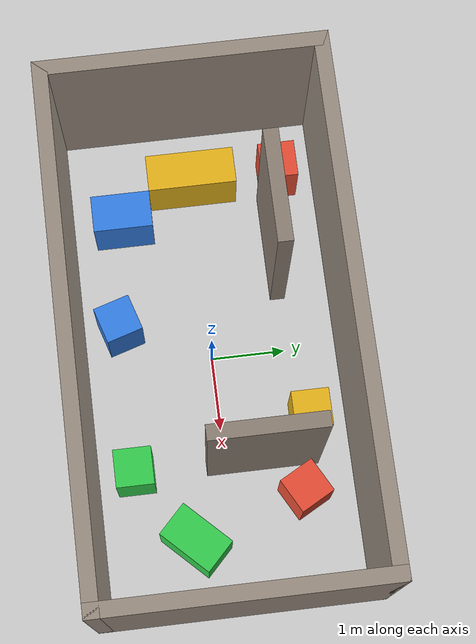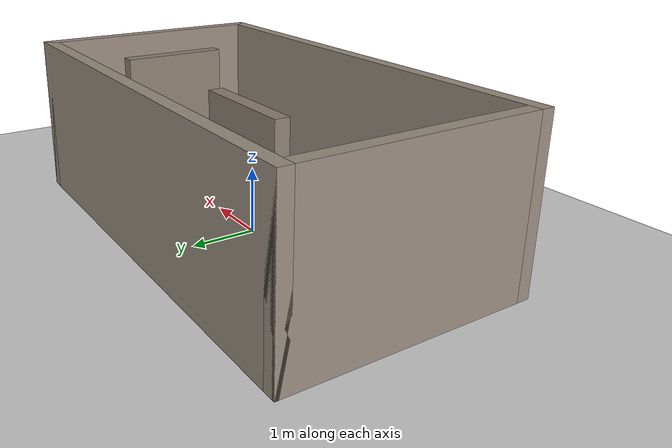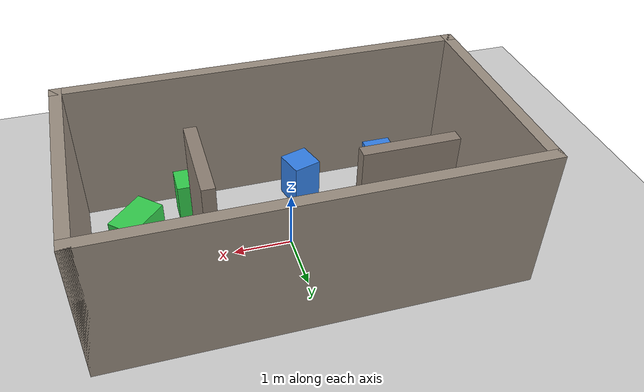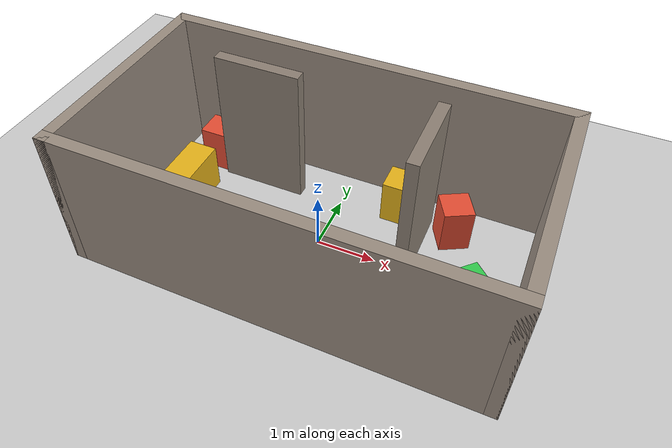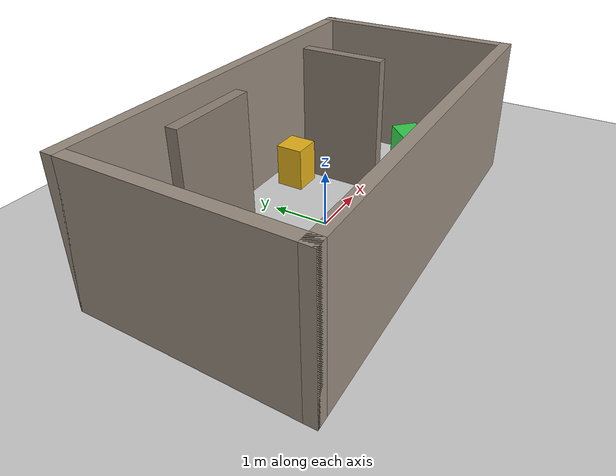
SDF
<?xml version="1.0" ?>
<sdf version="1.9">
  <world name="leo_exploration_world">

    <!-- ═══════════════════════════════════════════════════════════════
         Physics & plugins
    ═══════════════════════════════════════════════════════════════════ -->
    <physics name="1ms" type="ignored">
      <max_step_size>0.001</max_step_size>
      <real_time_factor>1.0</real_time_factor>
    </physics>

    <plugin filename="gz-sim-physics-system"
            name="gz::sim::systems::Physics"/>
    <plugin filename="gz-sim-user-commands-system"
            name="gz::sim::systems::UserCommands"/>
    <plugin filename="gz-sim-scene-broadcaster-system"
            name="gz::sim::systems::SceneBroadcaster"/>
    <plugin filename="gz-sim-sensors-system"
            name="gz::sim::systems::Sensors">
      <render_engine>ogre2</render_engine>
    </plugin>
    <plugin filename="gz-sim-imu-system"
            name="gz::sim::systems::Imu"/>
    <plugin filename="gz-sim-contact-system"
            name="gz::sim::systems::Contact"/>

    <!-- ═══════════════════════════════════════════════════════════════
         Lighting
    ═══════════════════════════════════════════════════════════════════ -->
    <light name="sun" type="directional">
      <cast_shadows>true</cast_shadows>
      <pose>0 0 10 0 0 0</pose>
      <diffuse>0.8 0.8 0.8 1</diffuse>
      <specular>0.2 0.2 0.2 1</specular>
      <attenuation>
        <range>1000</range>
        <constant>0.9</constant>
        <linear>0.01</linear>
        <quadratic>0.001</quadratic>
      </attenuation>
      <direction>-0.5 0.1 -0.9</direction>
    </light>

    <!-- ═══════════════════════════════════════════════════════════════
         Ground plane
    ═══════════════════════════════════════════════════════════════════ -->
    <model name="ground_plane">
      <static>true</static>
      <link name="link">
        <collision name="collision">
          <geometry>
            <plane><normal>0 0 1</normal><size>30 30</size></plane>
          </geometry>
        </collision>
        <visual name="visual">
          <geometry>
            <plane><normal>0 0 1</normal><size>30 30</size></plane>
          </geometry>
          <material>
            <ambient>0.8 0.8 0.8 1</ambient>
            <diffuse>0.8 0.8 0.8 1</diffuse>
          </material>
        </visual>
      </link>
    </model>

    <!-- North wall  y=+1.8 -->
    <model name="wall_N">
      <static>true</static>
      <pose>0 1.8 1.25 0 0 0</pose>
      <link name="link">
        <collision name="c"><geometry><box><size>7.0 0.2 2.5</size></box></geometry></collision>
        <visual name="v">
          <geometry><box><size>7.0 0.2 2.5</size></box></geometry>
          <material><ambient>0.6 0.55 0.5 1</ambient><diffuse>0.6 0.55 0.5 1</diffuse></material>
        </visual>
      </link>
    </model>

    <!-- South wall  y=-1.8 -->
    <model name="wall_S">
      <static>true</static>
      <pose>0 -1.8 1.25 0 0 0</pose>
      <link name="link">
        <collision name="c"><geometry><box><size>7.0 0.2 2.5</size></box></geometry></collision>
        <visual name="v">
          <geometry><box><size>7.0 0.2 2.5</size></box></geometry>
          <material><ambient>0.6 0.55 0.5 1</ambient><diffuse>0.6 0.55 0.5 1</diffuse></material>
        </visual>
      </link>
    </model>

    <!-- East wall  x=+3.4 -->
    <model name="wall_E">
      <static>true</static>
      <pose>3.4 0 1.25 0 0 0</pose>
      <link name="link">
        <collision name="c"><geometry><box><size>0.2 3.8 2.5</size></box></geometry></collision>
        <visual name="v">
          <geometry><box><size>0.2 3.8 2.5</size></box></geometry>
          <material><ambient>0.6 0.55 0.5 1</ambient><diffuse>0.6 0.55 0.5 1</diffuse></material>
        </visual>
      </link>
    </model>

    <!-- West wall  x=-3.4 -->
    <model name="wall_W">
      <static>true</static>
      <pose>-3.4 0 1.25 0 0 0</pose>
      <link name="link">
        <collision name="c"><geometry><box><size>0.2 3.8 2.5</size></box></geometry></collision>
        <visual name="v">
          <geometry><box><size>0.2 3.8 2.5</size></box></geometry>
          <material><ambient>0.6 0.55 0.5 1</ambient><diffuse>0.6 0.55 0.5 1</diffuse></material>
        </visual>
      </link>
    </model>

    <!-- Vertical divider -->
    <model name="divider_V_right">
      <static>true</static>
      <pose>1.5 0.5 1.25 0 0 0</pose>
      <link name="link">
        <collision name="c"><geometry><box><size>0.2 1.5 2.5</size></box></geometry></collision>
        <visual name="v">
          <geometry><box><size>0.2 1.5 2.5</size></box></geometry>
          <material><ambient>0.55 0.5 0.45 1</ambient><diffuse>0.55 0.5 0.45 1</diffuse></material>
        </visual>
      </link>
    </model>

    <!-- Horizontal divider -->
    <model name="divider_H_top">
      <static>true</static>
      <pose>-1.5 1.0 1.25 0 0 0</pose>
      <link name="link">
        <collision name="c"><geometry><box><size>1.5 0.2 2.5</size></box></geometry></collision>
        <visual name="v">
          <geometry><box><size>1.5 0.2 2.5</size></box></geometry>
          <material><ambient>0.55 0.5 0.45 1</ambient><diffuse>0.55 0.5 0.45 1</diffuse></material>
        </visual>
      </link>
    </model>

    <!-- ═══════════════════════════════════════════════════════════════
         Box obstacles — Repositioned for smaller room
    ═══════════════════════════════════════════════════════════════════ -->

    <model name="box_1">
      <static>true</static>
      <pose>-2.5 1.2 0.4 0 0 0</pose>
      <link name="link">
        <collision name="c"><geometry><box><size>0.5 0.5 0.8</size></box></geometry></collision>
        <visual name="v">
          <geometry><box><size>0.5 0.5 0.8</size></box></geometry>
          <material><ambient>0.9 0.3 0.2 1</ambient><diffuse>0.9 0.3 0.2 1</diffuse></material>
        </visual>
      </link>
    </model>

    <model name="box_2">
      <static>true</static>
      <pose>2.0 1.0 0.4 0 0 0.5</pose>
      <link name="link">
        <collision name="c"><geometry><box><size>0.5 0.5 0.8</size></box></geometry></collision>
        <visual name="v">
          <geometry><box><size>0.5 0.5 0.8</size></box></geometry>
          <material><ambient>0.9 0.3 0.2 1</ambient><diffuse>0.9 0.3 0.2 1</diffuse></material>
        </visual>
      </link>
    </model>

    <model name="box_3">
      <static>true</static>
      <pose>-2.0 -1.0 0.4 0 0 0</pose>
      <link name="link">
        <collision name="c"><geometry><box><size>0.5 0.8 0.8</size></box></geometry></collision>
        <visual name="v">
          <geometry><box><size>0.5 0.8 0.8</size></box></geometry>
          <material><ambient>0.2 0.5 0.9 1</ambient><diffuse>0.2 0.5 0.9 1</diffuse></material>
        </visual>
      </link>
    </model>

    <model name="box_4">
      <static>true</static>
      <pose>-0.5 -1.2 0.4 0 0 0.3</pose>
      <link name="link">
        <collision name="c"><geometry><box><size>0.5 0.5 0.8</size></box></geometry></collision>
        <visual name="v">
          <geometry><box><size>0.5 0.5 0.8</size></box></geometry>
          <material><ambient>0.2 0.5 0.9 1</ambient><diffuse>0.2 0.5 0.9 1</diffuse></material>
        </visual>
      </link>
    </model>

    <model name="box_5">
      <static>true</static>
      <pose>1.5 -1.2 0.4 0 0 0</pose>
      <link name="link">
        <collision name="c"><geometry><box><size>0.5 0.5 0.8</size></box></geometry></collision>
        <visual name="v">
          <geometry><box><size>0.5 0.5 0.8</size></box></geometry>
          <material><ambient>0.2 0.8 0.3 1</ambient><diffuse>0.2 0.8 0.3 1</diffuse></material>
        </visual>
      </link>
    </model>

    <model name="box_6">
      <static>true</static>
      <pose>2.5 -0.5 0.4 0 0 0.8</pose>
      <link name="link">
        <collision name="c"><geometry><box><size>0.8 0.5 0.8</size></box></geometry></collision>
        <visual name="v">
          <geometry><box><size>0.8 0.5 0.8</size></box></geometry>
          <material><ambient>0.2 0.8 0.3 1</ambient><diffuse>0.2 0.8 0.3 1</diffuse></material>
        </visual>
      </link>
    </model>

    <model name="box_7">
      <static>true</static>
      <pose>1.0 1.2 0.4 0 0 0</pose>
      <link name="link">
        <collision name="c"><geometry><box><size>0.5 0.5 0.8</size></box></geometry></collision>
        <visual name="v">
          <geometry><box><size>0.5 0.5 0.8</size></box></geometry>
          <material><ambient>0.9 0.7 0.1 1</ambient><diffuse>0.9 0.7 0.1 1</diffuse></material>
        </visual>
      </link>
    </model>

    <model name="box_8">
      <static>true</static>
      <pose>-2.5 0.0 0.4 0 0 0</pose>
      <link name="link">
        <collision name="c"><geometry><box><size>0.5 1.2 0.8</size></box></geometry></collision>
        <visual name="v">
          <geometry><box><size>0.5 1.2 0.8</size></box></geometry>
          <material><ambient>0.9 0.7 0.1 1</ambient><diffuse>0.9 0.7 0.1 1</diffuse></material>
        </visual>
      </link>
    </model>

  </world>
</sdf>
